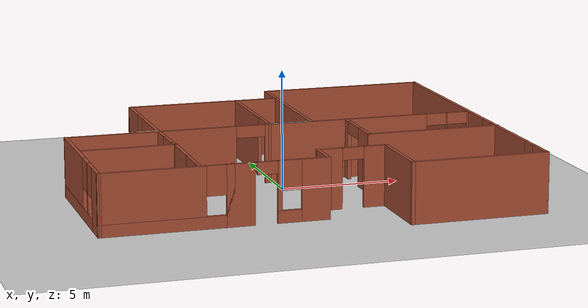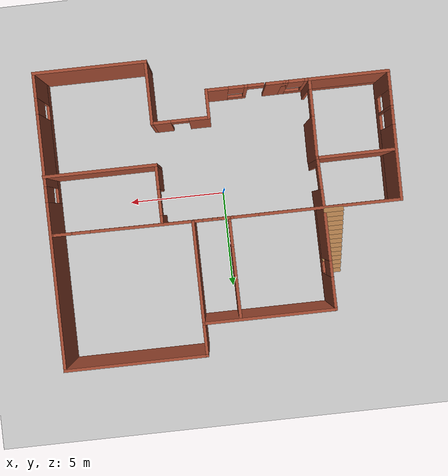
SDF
<sdf version="1.7">
 <world name="default">
  <light name="sun" type="directional">
   <pose>0 0 10 0 -0 0</pose>
   <diffuse>0.8 0.8 0.8 1</diffuse>
   <specular>0.2 0.2 0.2 1</specular>
   <attenuation>
    <range>1000</range>
    <constant>0.9</constant>
    <linear>0.01</linear>
    <quadratic>0.001</quadratic>
   </attenuation>
   <direction>-0.5 0.1 -0.9</direction>
   <spot><inner_angle>0</inner_angle><outer_angle>0</outer_angle><falloff>0</falloff></spot>
  </light>
  <model name="ground_plane">
   <static>1</static>
   <link name="link">
    <collision name="collision">
     <geometry><plane><normal>0 0 1</normal><size>100 100</size></plane></geometry>
     <surface>
      <contact><collide_bitmask>65535</collide_bitmask></contact>
      <friction><ode><mu>100</mu><mu2>50</mu2></ode></friction>
     </surface>
    </collision>
    <visual name="visual">
     <cast_shadows>0</cast_shadows>
     <geometry><plane><normal>0 0 1</normal><size>100 100</size></plane></geometry>
     <material>
      <script><uri>file://media/materials/scripts/gazebo.material</uri><name>Gazebo/Grey</name></script>
     </material>
    </visual>
   </link>
  </model>
  <gravity>0 0 -9.8</gravity>
  <magnetic_field>6e-06 2.3e-05 -4.2e-05</magnetic_field>
  <atmosphere type="adiabatic"/>
  <physics type="ode">
   <max_step_size>0.001</max_step_size>
   <real_time_factor>1</real_time_factor>
   <real_time_update_rate>1000</real_time_update_rate>
  </physics>
  <scene><ambient>0.4 0.4 0.4 1</ambient><background>0.7 0.7 0.7 1</background><shadows>1</shadows></scene>
  <spherical_coordinates>
   <surface_model>EARTH_WGS84</surface_model>
   <latitude_deg>0</latitude_deg>
   <longitude_deg>0</longitude_deg>
   <elevation>0</elevation>
   <heading_deg>0</heading_deg>
  </spherical_coordinates>
  <model name="map4">
   <pose>0.032945 0.628737 0 0 -0 0</pose>
   <link name="Stairs_0">
    <visual name="Stairs_0_Visual_0">
     <pose>-5.35318 4.14464 0.083333 0 -0 0</pose>
     <geometry><box><size>1 0.233333 0.166667</size></box></geometry>
     <material>
      <script><uri>file://media/materials/scripts/gazebo.material</uri><name>Gazebo/Wood</name></script>
      <ambient>1 1 1 1</ambient>
     </material>
     <meta><layer>0</layer></meta>
    </visual>
    <collision name="Stairs_0_Collision_0">
     <geometry><box><size>1 0.233333 0.166667</size></box></geometry>
     <pose>-5.35318 4.14464 0.083333 0 -0 0</pose>
    </collision>
    <visual name="Stairs_0_Visual_1">
     <pose>-5.35318 3.91131 0.25 0 -0 0</pose>
     <geometry><box><size>1 0.233333 0.166667</size></box></geometry>
     <material>
      <script><uri>file://media/materials/scripts/gazebo.material</uri><name>Gazebo/Wood</name></script>
      <ambient>1 1 1 1</ambient>
     </material>
     <meta><layer>0</layer></meta>
    </visual>
    <collision name="Stairs_0_Collision_1">
     <geometry><box><size>1 0.233333 0.166667</size></box></geometry>
     <pose>-5.35318 3.91131 0.25 0 -0 0</pose>
    </collision>
    <visual name="Stairs_0_Visual_2">
     <pose>-5.35318 3.67798 0.416667 0 -0 0</pose>
     <geometry><box><size>1 0.233333 0.166667</size></box></geometry>
     <material>
      <script><uri>file://media/materials/scripts/gazebo.material</uri><name>Gazebo/Wood</name></script>
      <ambient>1 1 1 1</ambient>
     </material>
     <meta><layer>0</layer></meta>
    </visual>
    <collision name="Stairs_0_Collision_2">
     <geometry><box><size>1 0.233333 0.166667</size></box></geometry>
     <pose>-5.35318 3.67798 0.416667 0 -0 0</pose>
    </collision>
    <visual name="Stairs_0_Visual_3">
     <pose>-5.35318 3.44464 0.583333 0 -0 0</pose>
     <geometry><box><size>1 0.233333 0.166667</size></box></geometry>
     <material>
      <script><uri>file://media/materials/scripts/gazebo.material</uri><name>Gazebo/Wood</name></script>
      <ambient>1 1 1 1</ambient>
     </material>
     <meta><layer>0</layer></meta>
    </visual>
    <collision name="Stairs_0_Collision_3">
     <geometry><box><size>1 0.233333 0.166667</size></box></geometry>
     <pose>-5.35318 3.44464 0.583333 0 -0 0</pose>
    </collision>
    <visual name="Stairs_0_Visual_4">
     <pose>-5.35318 3.21131 0.75 0 -0 0</pose>
     <geometry><box><size>1 0.233333 0.166667</size></box></geometry>
     <material>
      <script><uri>file://media/materials/scripts/gazebo.material</uri><name>Gazebo/Wood</name></script>
      <ambient>1 1 1 1</ambient>
     </material>
     <meta><layer>0</layer></meta>
    </visual>
    <collision name="Stairs_0_Collision_4">
     <geometry><box><size>1 0.233333 0.166667</size></box></geometry>
     <pose>-5.35318 3.21131 0.75 0 -0 0</pose>
    </collision>
    <visual name="Stairs_0_Visual_5">
     <pose>-5.35318 2.97798 0.916667 0 -0 0</pose>
     <geometry><box><size>1 0.233333 0.166667</size></box></geometry>
     <material>
      <script><uri>file://media/materials/scripts/gazebo.material</uri><name>Gazebo/Wood</name></script>
      <ambient>1 1 1 1</ambient>
     </material>
     <meta><layer>0</layer></meta>
    </visual>
    <collision name="Stairs_0_Collision_5">
     <geometry><box><size>1 0.233333 0.166667</size></box></geometry>
     <pose>-5.35318 2.97798 0.916667 0 -0 0</pose>
    </collision>
    <visual name="Stairs_0_Visual_6">
     <pose>-5.35318 2.74464 1.08333 0 -0 0</pose>
     <geometry><box><size>1 0.233333 0.166667</size></box></geometry>
     <material>
      <script><uri>file://media/materials/scripts/gazebo.material</uri><name>Gazebo/Wood</name></script>
      <ambient>1 1 1 1</ambient>
     </material>
     <meta><layer>0</layer></meta>
    </visual>
    <collision name="Stairs_0_Collision_6">
     <geometry><box><size>1 0.233333 0.166667</size></box></geometry>
     <pose>-5.35318 2.74464 1.08333 0 -0 0</pose>
    </collision>
    <visual name="Stairs_0_Visual_7">
     <pose>-5.35318 2.51131 1.25 0 -0 0</pose>
     <geometry><box><size>1 0.233333 0.166667</size></box></geometry>
     <material>
      <script><uri>file://media/materials/scripts/gazebo.material</uri><name>Gazebo/Wood</name></script>
      <ambient>1 1 1 1</ambient>
     </material>
     <meta><layer>0</layer></meta>
    </visual>
    <collision name="Stairs_0_Collision_7">
     <geometry><box><size>1 0.233333 0.166667</size></box></geometry>
     <pose>-5.35318 2.51131 1.25 0 -0 0</pose>
    </collision>
    <visual name="Stairs_0_Visual_8">
     <pose>-5.35318 2.27798 1.41667 0 -0 0</pose>
     <geometry><box><size>1 0.233333 0.166667</size></box></geometry>
     <material>
      <script><uri>file://media/materials/scripts/gazebo.material</uri><name>Gazebo/Wood</name></script>
      <ambient>1 1 1 1</ambient>
     </material>
     <meta><layer>0</layer></meta>
    </visual>
    <collision name="Stairs_0_Collision_8">
     <geometry><box><size>1 0.233333 0.166667</size></box></geometry>
     <pose>-5.35318 2.27798 1.41667 0 -0 0</pose>
    </collision>
    <visual name="Stairs_0_Visual_9">
     <pose>-5.35318 2.04465 1.58333 0 -0 0</pose>
     <geometry><box><size>1 0.233333 0.166667</size></box></geometry>
     <material>
      <script><uri>file://media/materials/scripts/gazebo.material</uri><name>Gazebo/Wood</name></script>
      <ambient>1 1 1 1</ambient>
     </material>
     <meta><layer>0</layer></meta>
    </visual>
    <collision name="Stairs_0_Collision_9">
     <geometry><box><size>1 0.233333 0.166667</size></box></geometry>
     <pose>-5.35318 2.04465 1.58333 0 -0 0</pose>
    </collision>
    <visual name="Stairs_0_Visual_10">
     <pose>-5.35318 1.81131 1.75 0 -0 0</pose>
     <geometry><box><size>1 0.233333 0.166667</size></box></geometry>
     <material>
      <script><uri>file://media/materials/scripts/gazebo.material</uri><name>Gazebo/Wood</name></script>
      <ambient>1 1 1 1</ambient>
     </material>
     <meta><layer>0</layer></meta>
    </visual>
    <collision name="Stairs_0_Collision_10">
     <geometry><box><size>1 0.233333 0.166667</size></box></geometry>
     <pose>-5.35318 1.81131 1.75 0 -0 0</pose>
    </collision>
    <visual name="Stairs_0_Visual_11">
     <pose>-5.35318 1.57798 1.91667 0 -0 0</pose>
     <geometry><box><size>1 0.233333 0.166667</size></box></geometry>
     <material>
      <script><uri>file://media/materials/scripts/gazebo.material</uri><name>Gazebo/Wood</name></script>
      <ambient>1 1 1 1</ambient>
     </material>
     <meta><layer>0</layer></meta>
    </visual>
    <collision name="Stairs_0_Collision_11">
     <geometry><box><size>1 0.233333 0.166667</size></box></geometry>
     <pose>-5.35318 1.57798 1.91667 0 -0 0</pose>
    </collision>
    <visual name="Stairs_0_Visual_12">
     <pose>-5.35318 1.34465 2.08333 0 -0 0</pose>
     <geometry><box><size>1 0.233333 0.166667</size></box></geometry>
     <material>
      <script><uri>file://media/materials/scripts/gazebo.material</uri><name>Gazebo/Wood</name></script>
      <ambient>1 1 1 1</ambient>
     </material>
     <meta><layer>0</layer></meta>
    </visual>
    <collision name="Stairs_0_Collision_12">
     <geometry><box><size>1 0.233333 0.166667</size></box></geometry>
     <pose>-5.35318 1.34465 2.08333 0 -0 0</pose>
    </collision>
    <visual name="Stairs_0_Visual_13">
     <pose>-5.35318 1.11131 2.25 0 -0 0</pose>
     <geometry><box><size>1 0.233333 0.166667</size></box></geometry>
     <material>
      <script><uri>file://media/materials/scripts/gazebo.material</uri><name>Gazebo/Wood</name></script>
      <ambient>1 1 1 1</ambient>
     </material>
     <meta><layer>0</layer></meta>
    </visual>
    <collision name="Stairs_0_Collision_13">
     <geometry><box><size>1 0.233333 0.166667</size></box></geometry>
     <pose>-5.35318 1.11131 2.25 0 -0 0</pose>
    </collision>
    <visual name="Stairs_0_Visual_14">
     <pose>-5.35318 0.877978 2.41667 0 -0 0</pose>
     <geometry><box><size>1 0.233333 0.166667</size></box></geometry>
     <material>
      <script><uri>file://media/materials/scripts/gazebo.material</uri><name>Gazebo/Wood</name></script>
      <ambient>1 1 1 1</ambient>
     </material>
     <meta><layer>0</layer></meta>
    </visual>
    <collision name="Stairs_0_Collision_14">
     <geometry><box><size>1 0.233333 0.166667</size></box></geometry>
     <pose>-5.35318 0.877978 2.41667 0 -0 0</pose>
    </collision>
   </link>
   <link name="Wall_0">
    <collision name="Wall_0_Collision">
     <geometry><box><size>6.75 0.15 2.5</size></box></geometry>
     <pose>0 0 1.25 0 -0 0</pose>
    </collision>
    <visual name="Wall_0_Visual">
     <pose>0 0 1.25 0 -0 0</pose>
     <geometry><box><size>6.75 0.15 2.5</size></box></geometry>
     <material>
      <script><uri>file://media/materials/scripts/gazebo.material</uri><name>Gazebo/Bricks</name></script>
      <ambient>1 1 1 1</ambient>
     </material>
     <meta><layer>0</layer></meta>
    </visual>
    <pose>-1.64003 5.825 0 0 -0 0</pose>
   </link>
   <link name="Wall_10">
    <collision name="Wall_10_Collision">
     <geometry><box><size>1.5 0.15 2.5</size></box></geometry>
     <pose>0 0 1.25 0 -0 0</pose>
    </collision>
    <visual name="Wall_10_Visual">
     <pose>0 0 1.25 0 -0 0</pose>
     <geometry><box><size>1.5 0.15 2.5</size></box></geometry>
     <material>
      <script><uri>file://media/materials/scripts/gazebo.material</uri><name>Gazebo/Bricks</name></script>
      <ambient>1 1 1 1</ambient>
     </material>
     <meta><layer>0</layer></meta>
    </visual>
    <pose>0.309969 -5 0 0 -0 -1.5708</pose>
   </link>
   <link name="Wall_11">
    <pose>-4.24003 -5.675 0 0 -0 3.14159</pose>
    <visual name="Wall_11_Visual_0">
     <pose>-4.03894 0 1.25 0 -0 0</pose>
     <geometry><box><size>1.17213 0.15 2.5</size></box></geometry>
     <material>
      <script><uri>file://media/materials/scripts/gazebo.material</uri><name>Gazebo/Bricks</name></script>
      <ambient>1 1 1 1</ambient>
     </material>
     <meta><layer>0</layer></meta>
    </visual>
    <collision name="Wall_11_Collision_0">
     <geometry><box><size>1.17213 0.15 2.5</size></box></geometry>
     <pose>-4.03894 0 1.25 0 -0 0</pose>
    </collision>
    <visual name="Wall_11_Visual_1">
     <pose>-1.00315 0 1.25 0 -0 0</pose>
     <geometry><box><size>1.14054 0.15 2.5</size></box></geometry>
     <material>
      <script><uri>file://media/materials/scripts/gazebo.material</uri><name>Gazebo/Bricks</name></script>
      <ambient>1 1 1 1</ambient>
     </material>
     <meta><layer>0</layer></meta>
    </visual>
    <collision name="Wall_11_Collision_1">
     <geometry><box><size>1.14054 0.15 2.5</size></box></geometry>
     <pose>-1.00315 0 1.25 0 -0 0</pose>
    </collision>
    <visual name="Wall_11_Visual_2">
     <pose>-0.592511 0 1.25 0 -0 0</pose>
     <geometry><box><size>0.319273 0.15 2.5</size></box></geometry>
     <material>
      <script><uri>file://media/materials/scripts/gazebo.material</uri><name>Gazebo/Bricks</name></script>
      <ambient>1 1 1 1</ambient>
     </material>
     <meta><layer>0</layer></meta>
    </visual>
    <collision name="Wall_11_Collision_2">
     <geometry><box><size>0.319273 0.15 2.5</size></box></geometry>
     <pose>-0.592511 0 1.25 0 -0 0</pose>
    </collision>
    <visual name="Wall_11_Visual_3">
     <pose>-2.96315 0 0.25 0 -0 0</pose>
     <geometry><box><size>0.979455 0.15 0.5</size></box></geometry>
     <material>
      <script><uri>file://media/materials/scripts/gazebo.material</uri><name>Gazebo/Bricks</name></script>
      <ambient>1 1 1 1</ambient>
     </material>
     <meta><layer>0</layer></meta>
    </visual>
    <collision name="Wall_11_Collision_3">
     <geometry><box><size>0.979455 0.15 0.5</size></box></geometry>
     <pose>-2.96315 0 0.25 0 -0 0</pose>
    </collision>
    <visual name="Wall_11_Visual_4">
     <pose>2.09606 0 0.25 0 -0 0</pose>
     <geometry><box><size>5.05788 0.15 0.5</size></box></geometry>
     <material>
      <script><uri>file://media/materials/scripts/gazebo.material</uri><name>Gazebo/Bricks</name></script>
      <ambient>1 1 1 1</ambient>
     </material>
     <meta><layer>0</layer></meta>
    </visual>
    <collision name="Wall_11_Collision_4">
     <geometry><box><size>5.05788 0.15 0.5</size></box></geometry>
     <pose>2.09606 0 0.25 0 -0 0</pose>
    </collision>
    <visual name="Wall_11_Visual_5">
     <pose>2.09606 0 0.25 0 -0 0</pose>
     <geometry><box><size>5.05788 0.15 0.5</size></box></geometry>
     <material>
      <script><uri>file://media/materials/scripts/gazebo.material</uri><name>Gazebo/Bricks</name></script>
      <ambient>1 1 1 1</ambient>
     </material>
     <meta><layer>0</layer></meta>
    </visual>
    <collision name="Wall_11_Collision_5">
     <geometry><box><size>5.05788 0.15 0.5</size></box></geometry>
     <pose>2.09606 0 0.25 0 -0 0</pose>
    </collision>
    <visual name="Wall_11_Visual_6">
     <pose>-2.56315 0 1.5 0 -0 0</pose>
     <geometry><box><size>0.179455 0.15 2</size></box></geometry>
     <material>
      <script><uri>file://media/materials/scripts/gazebo.material</uri><name>Gazebo/Bricks</name></script>
      <ambient>1 1 1 1</ambient>
     </material>
     <meta><layer>0</layer></meta>
    </visual>
    <collision name="Wall_11_Collision_6">
     <geometry><box><size>0.179455 0.15 2</size></box></geometry>
     <pose>-2.56315 0 1.5 0 -0 0</pose>
    </collision>
    <visual name="Wall_11_Visual_7">
     <pose>-2.56315 0 1.5 0 -0 0</pose>
     <geometry><box><size>0.179455 0.15 2</size></box></geometry>
     <material>
      <script><uri>file://media/materials/scripts/gazebo.material</uri><name>Gazebo/Bricks</name></script>
      <ambient>1 1 1 1</ambient>
     </material>
     <meta><layer>0</layer></meta>
    </visual>
    <collision name="Wall_11_Collision_7">
     <geometry><box><size>0.179455 0.15 2</size></box></geometry>
     <pose>-2.56315 0 1.5 0 -0 0</pose>
    </collision>
    <visual name="Wall_11_Visual_8">
     <pose>2.49606 0 1.5 0 -0 0</pose>
     <geometry><box><size>4.25788 0.15 2</size></box></geometry>
     <material>
      <script><uri>file://media/materials/scripts/gazebo.material</uri><name>Gazebo/Bricks</name></script>
      <ambient>1 1 1 1</ambient>
     </material>
     <meta><layer>0</layer></meta>
    </visual>
    <collision name="Wall_11_Collision_8">
     <geometry><box><size>4.25788 0.15 2</size></box></geometry>
     <pose>2.49606 0 1.5 0 -0 0</pose>
    </collision>
    <visual name="Wall_11_Visual_9">
     <pose>2.49606 0 1.5 0 -0 0</pose>
     <geometry><box><size>4.25788 0.15 2</size></box></geometry>
     <material>
      <script><uri>file://media/materials/scripts/gazebo.material</uri><name>Gazebo/Bricks</name></script>
      <ambient>1 1 1 1</ambient>
     </material>
     <meta><layer>0</layer></meta>
    </visual>
    <collision name="Wall_11_Collision_9">
     <geometry><box><size>4.25788 0.15 2</size></box></geometry>
     <pose>2.49606 0 1.5 0 -0 0</pose>
    </collision>
    <visual name="Wall_11_Visual_10">
     <pose>-3.05287 0 1.9 0 -0 0</pose>
     <geometry><box><size>0.8 0.15 1.2</size></box></geometry>
     <material>
      <script><uri>file://media/materials/scripts/gazebo.material</uri><name>Gazebo/Bricks</name></script>
      <ambient>1 1 1 1</ambient>
     </material>
     <meta><layer>0</layer></meta>
    </visual>
    <collision name="Wall_11_Collision_10">
     <geometry><box><size>0.8 0.15 1.2</size></box></geometry>
     <pose>-3.05287 0 1.9 0 -0 0</pose>
    </collision>
    <visual name="Wall_11_Visual_11">
     <pose>-0.032875 0 1.9 0 -0 0</pose>
     <geometry><box><size>0.8 0.15 1.2</size></box></geometry>
     <material>
      <script><uri>file://media/materials/scripts/gazebo.material</uri><name>Gazebo/Bricks</name></script>
      <ambient>1 1 1 1</ambient>
     </material>
     <meta><layer>0</layer></meta>
    </visual>
    <collision name="Wall_11_Collision_11">
     <geometry><box><size>0.8 0.15 1.2</size></box></geometry>
     <pose>-0.032875 0 1.9 0 -0 0</pose>
    </collision>
    <visual name="Wall_11_Visual_12">
     <pose>-0.032875 0 1.9 0 -0 0</pose>
     <geometry><box><size>0.8 0.15 1.2</size></box></geometry>
     <material>
      <script><uri>file://media/materials/scripts/gazebo.material</uri><name>Gazebo/Bricks</name></script>
      <ambient>1 1 1 1</ambient>
     </material>
     <meta><layer>0</layer></meta>
    </visual>
    <collision name="Wall_11_Collision_12">
     <geometry><box><size>0.8 0.15 1.2</size></box></geometry>
     <pose>-0.032875 0 1.9 0 -0 0</pose>
    </collision>
    <visual name="Wall_11_Visual_13">
     <pose>-2.06278 0 2.25 0 -0 0</pose>
     <geometry><box><size>0.821272 0.15 0.5</size></box></geometry>
     <material>
      <script><uri>file://media/materials/scripts/gazebo.material</uri><name>Gazebo/Bricks</name></script>
      <ambient>1 1 1 1</ambient>
     </material>
     <meta><layer>0</layer></meta>
    </visual>
    <collision name="Wall_11_Collision_13">
     <geometry><box><size>0.821272 0.15 0.5</size></box></geometry>
     <pose>-2.06278 0 2.25 0 -0 0</pose>
    </collision>
    <visual name="Wall_11_Visual_14">
     <pose>-2.06278 0 2.25 0 -0 0</pose>
     <geometry><box><size>0.821272 0.15 0.5</size></box></geometry>
     <material>
      <script><uri>file://media/materials/scripts/gazebo.material</uri><name>Gazebo/Bricks</name></script>
      <ambient>1 1 1 1</ambient>
     </material>
     <meta><layer>0</layer></meta>
    </visual>
    <collision name="Wall_11_Collision_14">
     <geometry><box><size>0.821272 0.15 0.5</size></box></geometry>
     <pose>-2.06278 0 2.25 0 -0 0</pose>
    </collision>
   </link>
   <link name="Wall_12">
    <pose>-8.77482 -2.46958 0 0 -0 1.56605</pose>
    <visual name="Wall_12_Visual_0">
     <pose>-2.77549 0 1.25 0 -0 0</pose>
     <geometry><box><size>1.00992 0.15 2.5</size></box></geometry>
     <material>
      <script><uri>file://media/materials/scripts/gazebo.material</uri><name>Gazebo/Bricks</name></script>
      <ambient>1 1 1 1</ambient>
     </material>
     <meta><layer>0</layer></meta>
    </visual>
    <collision name="Wall_12_Collision_0">
     <geometry><box><size>1.00992 0.15 2.5</size></box></geometry>
     <pose>-2.77549 0 1.25 0 -0 0</pose>
    </collision>
    <visual name="Wall_12_Visual_1">
     <pose>0.504959 0 0.25 0 -0 0</pose>
     <geometry><box><size>5.55099 0.15 0.5</size></box></geometry>
     <material>
      <script><uri>file://media/materials/scripts/gazebo.material</uri><name>Gazebo/Bricks</name></script>
      <ambient>1 1 1 1</ambient>
     </material>
     <meta><layer>0</layer></meta>
    </visual>
    <collision name="Wall_12_Collision_1">
     <geometry><box><size>5.55099 0.15 0.5</size></box></geometry>
     <pose>0.504959 0 0.25 0 -0 0</pose>
    </collision>
    <visual name="Wall_12_Visual_2">
     <pose>-1.40054 0 1.5 0 -0 0</pose>
     <geometry><box><size>0.139989 0.15 2</size></box></geometry>
     <material>
      <script><uri>file://media/materials/scripts/gazebo.material</uri><name>Gazebo/Bricks</name></script>
      <ambient>1 1 1 1</ambient>
     </material>
     <meta><layer>0</layer></meta>
    </visual>
    <collision name="Wall_12_Collision_2">
     <geometry><box><size>0.139989 0.15 2</size></box></geometry>
     <pose>-1.40054 0 1.5 0 -0 0</pose>
    </collision>
    <visual name="Wall_12_Visual_3">
     <pose>1.37495 0 1.5 0 -0 0</pose>
     <geometry><box><size>3.811 0.15 2</size></box></geometry>
     <material>
      <script><uri>file://media/materials/scripts/gazebo.material</uri><name>Gazebo/Bricks</name></script>
      <ambient>1 1 1 1</ambient>
     </material>
     <meta><layer>0</layer></meta>
    </visual>
    <collision name="Wall_12_Collision_3">
     <geometry><box><size>3.811 0.15 2</size></box></geometry>
     <pose>1.37495 0 1.5 0 -0 0</pose>
    </collision>
    <visual name="Wall_12_Visual_4">
     <pose>-1.87054 0 1.9 0 -0 0</pose>
     <geometry><box><size>0.8 0.15 1.2</size></box></geometry>
     <material>
      <script><uri>file://media/materials/scripts/gazebo.material</uri><name>Gazebo/Bricks</name></script>
      <ambient>1 1 1 1</ambient>
     </material>
     <meta><layer>0</layer></meta>
    </visual>
    <collision name="Wall_12_Collision_4">
     <geometry><box><size>0.8 0.15 1.2</size></box></geometry>
     <pose>-1.87054 0 1.9 0 -0 0</pose>
    </collision>
    <visual name="Wall_12_Visual_5">
     <pose>-0.930546 0 1.9 0 -0 0</pose>
     <geometry><box><size>0.8 0.15 1.2</size></box></geometry>
     <material>
      <script><uri>file://media/materials/scripts/gazebo.material</uri><name>Gazebo/Bricks</name></script>
      <ambient>1 1 1 1</ambient>
     </material>
     <meta><layer>0</layer></meta>
    </visual>
    <collision name="Wall_12_Collision_5">
     <geometry><box><size>0.8 0.15 1.2</size></box></geometry>
     <pose>-0.930546 0 1.9 0 -0 0</pose>
    </collision>
   </link>
   <link name="Wall_13">
    <pose>-4.45961 0.735835 0 0 -0 0</pose>
    <visual name="Wall_13_Visual_0">
     <pose>-0.768066 0 1.25 0 -0 0</pose>
     <geometry><box><size>7.21387 0.15 2.5</size></box></geometry>
     <material>
      <script><uri>file://media/materials/scripts/gazebo.material</uri><name>Gazebo/Bricks</name></script>
      <ambient>1 1 1 1</ambient>
     </material>
     <meta><layer>0</layer></meta>
    </visual>
    <collision name="Wall_13_Collision_0">
     <geometry><box><size>7.21387 0.15 2.5</size></box></geometry>
     <pose>-0.768066 0 1.25 0 -0 0</pose>
    </collision>
    <visual name="Wall_13_Visual_1">
     <pose>4.22693 0 1.25 0 -0 0</pose>
     <geometry><box><size>0.296132 0.15 2.5</size></box></geometry>
     <material>
      <script><uri>file://media/materials/scripts/gazebo.material</uri><name>Gazebo/Bricks</name></script>
      <ambient>1 1 1 1</ambient>
     </material>
     <meta><layer>0</layer></meta>
    </visual>
    <collision name="Wall_13_Collision_1">
     <geometry><box><size>0.296132 0.15 2.5</size></box></geometry>
     <pose>4.22693 0 1.25 0 -0 0</pose>
    </collision>
    <visual name="Wall_13_Visual_2">
     <pose>3.45887 0 2.25 0 -0 0</pose>
     <geometry><box><size>1.24 0.15 0.5</size></box></geometry>
     <material>
      <script><uri>file://media/materials/scripts/gazebo.material</uri><name>Gazebo/Bricks</name></script>
      <ambient>1 1 1 1</ambient>
     </material>
     <meta><layer>0</layer></meta>
    </visual>
    <collision name="Wall_13_Collision_2">
     <geometry><box><size>1.24 0.15 0.5</size></box></geometry>
     <pose>3.45887 0 2.25 0 -0 0</pose>
    </collision>
   </link>
   <link name="Wall_14">
    <pose>-0.174822 3.25542 0 0 -0 1.57683</pose>
    <visual name="Wall_14_Visual_0">
     <pose>-2.46216 0 1.25 0 -0 0</pose>
     <geometry><box><size>0.265672 0.15 2.5</size></box></geometry>
     <material>
      <script><uri>file://media/materials/scripts/gazebo.material</uri><name>Gazebo/Bricks</name></script>
      <ambient>1 1 1 1</ambient>
     </material>
     <meta><layer>0</layer></meta>
    </visual>
    <collision name="Wall_14_Collision_0">
     <geometry><box><size>0.265672 0.15 2.5</size></box></geometry>
     <pose>-2.46216 0 1.25 0 -0 0</pose>
    </collision>
    <visual name="Wall_14_Visual_1">
     <pose>0.762832 0 1.25 0 -0 0</pose>
     <geometry><box><size>3.66433 0.15 2.5</size></box></geometry>
     <material>
      <script><uri>file://media/materials/scripts/gazebo.material</uri><name>Gazebo/Bricks</name></script>
      <ambient>1 1 1 1</ambient>
     </material>
     <meta><layer>0</layer></meta>
    </visual>
    <collision name="Wall_14_Collision_1">
     <geometry><box><size>3.66433 0.15 2.5</size></box></geometry>
     <pose>0.762832 0 1.25 0 -0 0</pose>
    </collision>
    <visual name="Wall_14_Visual_2">
     <pose>-1.69933 0 2.25 0 -0 0</pose>
     <geometry><box><size>1.25999 0.15 0.5</size></box></geometry>
     <material>
      <script><uri>file://media/materials/scripts/gazebo.material</uri><name>Gazebo/Bricks</name></script>
      <ambient>1 1 1 1</ambient>
     </material>
     <meta><layer>0</layer></meta>
    </visual>
    <collision name="Wall_14_Collision_2">
     <geometry><box><size>1.25999 0.15 0.5</size></box></geometry>
     <pose>-1.69933 0 2.25 0 -0 0</pose>
    </collision>
   </link>
   <link name="Wall_16">
    <pose>-4.92003 3.285 0 0 -0 -1.56292</pose>
    <visual name="Wall_16_Visual_0">
     <pose>-1.76684 0 1.25 0 -0 0</pose>
     <geometry><box><size>1.69648 0.15 2.5</size></box></geometry>
     <material>
      <script><uri>file://media/materials/scripts/gazebo.material</uri><name>Gazebo/Bricks</name></script>
      <ambient>1 1 1 1</ambient>
     </material>
     <meta><layer>0</layer></meta>
    </visual>
    <collision name="Wall_16_Collision_0">
     <geometry><box><size>1.69648 0.15 2.5</size></box></geometry>
     <pose>-1.76684 0 1.25 0 -0 0</pose>
    </collision>
    <visual name="Wall_16_Visual_1">
     <pose>0.84824 0 0.25 0 -0 0</pose>
     <geometry><box><size>3.53368 0.15 0.5</size></box></geometry>
     <material>
      <script><uri>file://media/materials/scripts/gazebo.material</uri><name>Gazebo/Bricks</name></script>
      <ambient>1 1 1 1</ambient>
     </material>
     <meta><layer>0</layer></meta>
    </visual>
    <collision name="Wall_16_Collision_1">
     <geometry><box><size>3.53368 0.15 0.5</size></box></geometry>
     <pose>0.84824 0 0.25 0 -0 0</pose>
    </collision>
    <visual name="Wall_16_Visual_2">
     <pose>1.24824 0 1.5 0 -0 0</pose>
     <geometry><box><size>2.73368 0.15 2</size></box></geometry>
     <material>
      <script><uri>file://media/materials/scripts/gazebo.material</uri><name>Gazebo/Bricks</name></script>
      <ambient>1 1 1 1</ambient>
     </material>
     <meta><layer>0</layer></meta>
    </visual>
    <collision name="Wall_16_Collision_2">
     <geometry><box><size>2.73368 0.15 2</size></box></geometry>
     <pose>1.24824 0 1.5 0 -0 0</pose>
    </collision>
    <visual name="Wall_16_Visual_3">
     <pose>-0.518599 0 1.9 0 -0 0</pose>
     <geometry><box><size>0.8 0.15 1.2</size></box></geometry>
     <material>
      <script><uri>file://media/materials/scripts/gazebo.material</uri><name>Gazebo/Bricks</name></script>
      <ambient>1 1 1 1</ambient>
     </material>
     <meta><layer>0</layer></meta>
    </visual>
    <collision name="Wall_16_Collision_3">
     <geometry><box><size>0.8 0.15 1.2</size></box></geometry>
     <pose>-0.518599 0 1.9 0 -0 0</pose>
    </collision>
   </link>
   <link name="Wall_21">
    <collision name="Wall_21_Collision">
     <geometry><box><size>4.00005 0.15 2.5</size></box></geometry>
     <pose>0 0 1.25 0 -0 0</pose>
    </collision>
    <visual name="Wall_21_Visual">
     <pose>0 0 1.25 0 -0 0</pose>
     <geometry><box><size>4.00005 0.15 2.5</size></box></geometry>
     <material>
      <script><uri>file://media/materials/scripts/gazebo.material</uri><name>Gazebo/Bricks</name></script>
      <ambient>1 1 1 1</ambient>
     </material>
     <meta><layer>0</layer></meta>
    </visual>
    <pose>-6.75617 -1.75987 0 0 -0 0.005195</pose>
   </link>
   <link name="Wall_22">
    <pose>-4.83117 -3.68487 0 0 -0 -1.58113</pose>
    <visual name="Wall_22_Visual_0">
     <pose>-0.935239 0 1.25 0 -0 0</pose>
     <geometry><box><size>2.14973 0.15 2.5</size></box></geometry>
     <material>
      <script><uri>file://media/materials/scripts/gazebo.material</uri><name>Gazebo/Bricks</name></script>
      <ambient>1 1 1 1</ambient>
     </material>
     <meta><layer>0</layer></meta>
    </visual>
    <collision name="Wall_22_Collision_0">
     <geometry><box><size>2.14973 0.15 2.5</size></box></geometry>
     <pose>-0.935239 0 1.25 0 -0 0</pose>
    </collision>
    <visual name="Wall_22_Visual_1">
     <pose>1.753 0 1.25 0 -0 0</pose>
     <geometry><box><size>0.514216 0.15 2.5</size></box></geometry>
     <material>
      <script><uri>file://media/materials/scripts/gazebo.material</uri><name>Gazebo/Bricks</name></script>
      <ambient>1 1 1 1</ambient>
     </material>
     <meta><layer>0</layer></meta>
    </visual>
    <collision name="Wall_22_Collision_1">
     <geometry><box><size>0.514216 0.15 2.5</size></box></geometry>
     <pose>1.753 0 1.25 0 -0 0</pose>
    </collision>
    <visual name="Wall_22_Visual_2">
     <pose>0.817756 0 2.25 0 -0 0</pose>
     <geometry><box><size>1.35626 0.15 0.5</size></box></geometry>
     <material>
      <script><uri>file://media/materials/scripts/gazebo.material</uri><name>Gazebo/Bricks</name></script>
      <ambient>1 1 1 1</ambient>
     </material>
     <meta><layer>0</layer></meta>
    </visual>
    <collision name="Wall_22_Collision_2">
     <geometry><box><size>1.35626 0.15 0.5</size></box></geometry>
     <pose>0.817756 0 2.25 0 -0 0</pose>
    </collision>
   </link>
   <link name="Wall_26">
    <collision name="Wall_26_Collision">
     <geometry><box><size>5.25 0.15 2.5</size></box></geometry>
     <pose>0 0 1.25 0 -0 0</pose>
    </collision>
    <visual name="Wall_26_Visual">
     <pose>0 0 1.25 0 -0 0</pose>
     <geometry><box><size>5.25 0.15 2.5</size></box></geometry>
     <material>
      <script><uri>file://media/materials/scripts/gazebo.material</uri><name>Gazebo/Bricks</name></script>
      <ambient>1 1 1 1</ambient>
     </material>
     <meta><layer>0</layer></meta>
    </visual>
    <pose>1.65997 3.275 0 0 -0 -1.5708</pose>
   </link>
   <link name="Wall_27">
    <collision name="Wall_27_Collision">
     <geometry><box><size>1.96961 0.15 2.5</size></box></geometry>
     <pose>0 0 1.25 0 -0 0</pose>
    </collision>
    <visual name="Wall_27_Visual">
     <pose>0 0 1.25 0 -0 0</pose>
     <geometry><box><size>1.96961 0.15 2.5</size></box></geometry>
     <material>
      <script><uri>file://media/materials/scripts/gazebo.material</uri><name>Gazebo/Grey</name></script>
      <ambient>1 1 1 1</ambient>
     </material>
     <meta><layer>0</layer></meta>
    </visual>
    <pose>0.750178 0.730417 0 0 -0 3.13564</pose>
   </link>
   <link name="Wall_28">
    <pose>4.25018 0.705417 0 0 -0 -0.006898</pose>
    <visual name="Wall_28_Visual_0">
     <pose>-0.977519 0 1.25 0 -0 0</pose>
     <geometry><box><size>7.01475 0.15 2.5</size></box></geometry>
     <material>
      <script><uri>file://media/materials/scripts/gazebo.material</uri><name>Gazebo/Bricks</name></script>
      <ambient>1 1 1 1</ambient>
     </material>
     <meta><layer>0</layer></meta>
    </visual>
    <collision name="Wall_28_Collision_0">
     <geometry><box><size>7.01475 0.15 2.5</size></box></geometry>
     <pose>-0.977519 0 1.25 0 -0 0</pose>
    </collision>
    <visual name="Wall_28_Visual_1">
     <pose>3.45142 0 1.25 0 -0 0</pose>
     <geometry><box><size>0.04313 0.15 2.5</size></box></geometry>
     <material>
      <script><uri>file://media/materials/scripts/gazebo.material</uri><name>Gazebo/Bricks</name></script>
      <ambient>1 1 1 1</ambient>
     </material>
     <meta><layer>0</layer></meta>
    </visual>
    <collision name="Wall_28_Collision_1">
     <geometry><box><size>0.04313 0.15 2.5</size></box></geometry>
     <pose>3.45142 0 1.25 0 -0 0</pose>
    </collision>
    <visual name="Wall_28_Visual_2">
     <pose>4.42894 0 1.25 0 -0 0</pose>
     <geometry><box><size>0.111909 0.15 2.5</size></box></geometry>
     <material>
      <script><uri>file://media/materials/scripts/gazebo.material</uri><name>Gazebo/Bricks</name></script>
      <ambient>1 1 1 1</ambient>
     </material>
     <meta><layer>0</layer></meta>
    </visual>
    <collision name="Wall_28_Collision_2">
     <geometry><box><size>0.111909 0.15 2.5</size></box></geometry>
     <pose>4.42894 0 1.25 0 -0 0</pose>
    </collision>
    <visual name="Wall_28_Visual_3">
     <pose>2.97986 0 2.25 0 -0 0</pose>
     <geometry><box><size>0.9 0.15 0.5</size></box></geometry>
     <material>
      <script><uri>file://media/materials/scripts/gazebo.material</uri><name>Gazebo/Bricks</name></script>
      <ambient>1 1 1 1</ambient>
     </material>
     <meta><layer>0</layer></meta>
    </visual>
    <collision name="Wall_28_Collision_3">
     <geometry><box><size>0.9 0.15 0.5</size></box></geometry>
     <pose>2.97986 0 2.25 0 -0 0</pose>
    </collision>
    <visual name="Wall_28_Visual_4">
     <pose>3.92299 0 2.25 0 -0 0</pose>
     <geometry><box><size>0.9 0.15 0.5</size></box></geometry>
     <material>
      <script><uri>file://media/materials/scripts/gazebo.material</uri><name>Gazebo/Bricks</name></script>
      <ambient>1 1 1 1</ambient>
     </material>
     <meta><layer>0</layer></meta>
    </visual>
    <collision name="Wall_28_Collision_4">
     <geometry><box><size>0.9 0.15 0.5</size></box></geometry>
     <pose>3.92299 0 2.25 0 -0 0</pose>
    </collision>
   </link>
   <link name="Wall_3">
    <collision name="Wall_3_Collision">
     <geometry><box><size>1.75 0.15 2.5</size></box></geometry>
     <pose>0 0 1.25 0 -0 0</pose>
    </collision>
    <visual name="Wall_3_Visual">
     <pose>0 0 1.25 0 -0 0</pose>
     <geometry><box><size>1.75 0.15 2.5</size></box></geometry>
     <material>
      <script><uri>file://media/materials/scripts/gazebo.material</uri><name>Gazebo/Bricks</name></script>
      <ambient>1 1 1 1</ambient>
     </material>
     <meta><layer>0</layer></meta>
    </visual>
    <pose>1.65997 6.625 0 0 -0 1.5708</pose>
   </link>
   <link name="Wall_39">
    <pose>3.19039 -0.839165 0 0 -0 1.5708</pose>
    <visual name="Wall_39_Visual_0">
     <pose>-0.85667 0 1.25 0 -0 0</pose>
     <geometry><box><size>1.28666 0.15 2.5</size></box></geometry>
     <material>
      <script><uri>file://media/materials/scripts/gazebo.material</uri><name>Gazebo/Bricks</name></script>
      <ambient>1 1 1 1</ambient>
     </material>
     <meta><layer>0</layer></meta>
    </visual>
    <collision name="Wall_39_Collision_0">
     <geometry><box><size>1.28666 0.15 2.5</size></box></geometry>
     <pose>-0.85667 0 1.25 0 -0 0</pose>
    </collision>
    <visual name="Wall_39_Visual_1">
     <pose>1.29749 0 1.25 0 -0 0</pose>
     <geometry><box><size>0.405023 0.15 2.5</size></box></geometry>
     <material>
      <script><uri>file://media/materials/scripts/gazebo.material</uri><name>Gazebo/Bricks</name></script>
      <ambient>1 1 1 1</ambient>
     </material>
     <meta><layer>0</layer></meta>
    </visual>
    <collision name="Wall_39_Collision_1">
     <geometry><box><size>0.405023 0.15 2.5</size></box></geometry>
     <pose>1.29749 0 1.25 0 -0 0</pose>
    </collision>
    <visual name="Wall_39_Visual_2">
     <pose>0.440819 0 2.25 0 -0 0</pose>
     <geometry><box><size>1.30832 0.15 0.5</size></box></geometry>
     <material>
      <script><uri>file://media/materials/scripts/gazebo.material</uri><name>Gazebo/Bricks</name></script>
      <ambient>1 1 1 1</ambient>
     </material>
     <meta><layer>0</layer></meta>
    </visual>
    <collision name="Wall_39_Collision_2">
     <geometry><box><size>1.30832 0.15 0.5</size></box></geometry>
     <pose>0.440819 0 2.25 0 -0 0</pose>
    </collision>
   </link>
   <link name="Wall_4">
    <collision name="Wall_4_Collision">
     <geometry><box><size>7.25 0.15 2.5</size></box></geometry>
     <pose>0 0 1.25 0 -0 0</pose>
    </collision>
    <visual name="Wall_4_Visual">
     <pose>0 0 1.25 0 -0 0</pose>
     <geometry><box><size>7.25 0.15 2.5</size></box></geometry>
     <material>
      <script><uri>file://media/materials/scripts/gazebo.material</uri><name>Gazebo/Bricks</name></script>
      <ambient>1 1 1 1</ambient>
     </material>
     <meta><layer>0</layer></meta>
    </visual>
    <pose>5.20997 7.425 0 0 -0 0</pose>
   </link>
   <link name="Wall_42">
    <collision name="Wall_42_Collision">
     <geometry><box><size>5.75 0.15 2.5</size></box></geometry>
     <pose>0 0 1.25 0 -0 0</pose>
    </collision>
    <visual name="Wall_42_Visual">
     <pose>0 0 1.25 0 -0 0</pose>
     <geometry><box><size>5.75 0.15 2.5</size></box></geometry>
     <material>
      <script><uri>file://media/materials/scripts/gazebo.material</uri><name>Gazebo/Bricks</name></script>
      <ambient>1 1 1 1</ambient>
     </material>
     <meta><layer>0</layer></meta>
    </visual>
    <pose>5.99039 -2.26417 0 0 -0 0</pose>
   </link>
   <link name="Wall_44">
    <pose>-4.8656 -0.492433 0 0 -0 -1.54342</pose>
    <visual name="Wall_44_Visual_0">
     <pose>-0.819438 0 1.25 0 -0 0</pose>
     <geometry><box><size>1.02693 0.15 2.5</size></box></geometry>
     <material>
      <script><uri>file://media/materials/scripts/gazebo.material</uri><name>Gazebo/Bricks</name></script>
      <ambient>1 1 1 1</ambient>
     </material>
     <meta><layer>0</layer></meta>
    </visual>
    <collision name="Wall_44_Collision_0">
     <geometry><box><size>1.02693 0.15 2.5</size></box></geometry>
     <pose>-0.819438 0 1.25 0 -0 0</pose>
    </collision>
    <visual name="Wall_44_Visual_1">
     <pose>1.08335 0 1.25 0 -0 0</pose>
     <geometry><box><size>0.499104 0.15 2.5</size></box></geometry>
     <material>
      <script><uri>file://media/materials/scripts/gazebo.material</uri><name>Gazebo/Bricks</name></script>
      <ambient>1 1 1 1</ambient>
     </material>
     <meta><layer>0</layer></meta>
    </visual>
    <collision name="Wall_44_Collision_1">
     <geometry><box><size>0.499104 0.15 2.5</size></box></geometry>
     <pose>1.08335 0 1.25 0 -0 0</pose>
    </collision>
    <visual name="Wall_44_Visual_2">
     <pose>0.263914 0 2.25 0 -0 0</pose>
     <geometry><box><size>1.13977 0.15 0.5</size></box></geometry>
     <material>
      <script><uri>file://media/materials/scripts/gazebo.material</uri><name>Gazebo/Bricks</name></script>
      <ambient>1 1 1 1</ambient>
     </material>
     <meta><layer>0</layer></meta>
    </visual>
    <collision name="Wall_44_Collision_2">
     <geometry><box><size>1.13977 0.15 0.5</size></box></geometry>
     <pose>0.263914 0 2.25 0 -0 0</pose>
    </collision>
   </link>
   <link name="Wall_5">
    <pose>8.75997 -0 0 0 -0 -1.5708</pose>
    <visual name="Wall_5_Visual_0">
     <pose>-3.25411 0 1.25 0 -0 0</pose>
     <geometry><box><size>8.49178 0.15 2.5</size></box></geometry>
     <material>
      <script><uri>file://media/materials/scripts/gazebo.material</uri><name>Gazebo/Bricks</name></script>
      <ambient>1 1 1 1</ambient>
     </material>
     <meta><layer>0</layer></meta>
    </visual>
    <collision name="Wall_5_Collision_0">
     <geometry><box><size>8.49178 0.15 2.5</size></box></geometry>
     <pose>-3.25411 0 1.25 0 -0 0</pose>
    </collision>
    <visual name="Wall_5_Visual_1">
     <pose>4.24589 0 0.25 0 -0 0</pose>
     <geometry><box><size>6.50822 0.15 0.5</size></box></geometry>
     <material>
      <script><uri>file://media/materials/scripts/gazebo.material</uri><name>Gazebo/Bricks</name></script>
      <ambient>1 1 1 1</ambient>
     </material>
     <meta><layer>0</layer></meta>
    </visual>
    <collision name="Wall_5_Collision_1">
     <geometry><box><size>6.50822 0.15 0.5</size></box></geometry>
     <pose>4.24589 0 0.25 0 -0 0</pose>
    </collision>
    <visual name="Wall_5_Visual_2">
     <pose>3.59891 0 1.5 0 -0 0</pose>
     <geometry><box><size>3.61426 0.15 2</size></box></geometry>
     <material>
      <script><uri>file://media/materials/scripts/gazebo.material</uri><name>Gazebo/Bricks</name></script>
      <ambient>1 1 1 1</ambient>
     </material>
     <meta><layer>0</layer></meta>
    </visual>
    <collision name="Wall_5_Collision_2">
     <geometry><box><size>3.61426 0.15 2</size></box></geometry>
     <pose>3.59891 0 1.5 0 -0 0</pose>
    </collision>
    <visual name="Wall_5_Visual_3">
     <pose>6.85302 0 1.5 0 -0 0</pose>
     <geometry><box><size>1.29396 0.15 2</size></box></geometry>
     <material>
      <script><uri>file://media/materials/scripts/gazebo.material</uri><name>Gazebo/Bricks</name></script>
      <ambient>1 1 1 1</ambient>
     </material>
     <meta><layer>0</layer></meta>
    </visual>
    <collision name="Wall_5_Collision_3">
     <geometry><box><size>1.29396 0.15 2</size></box></geometry>
     <pose>6.85302 0 1.5 0 -0 0</pose>
    </collision>
    <visual name="Wall_5_Visual_4">
     <pose>1.39178 0 1.9 0 -0 0</pose>
     <geometry><box><size>0.8 0.15 1.2</size></box></geometry>
     <material>
      <script><uri>file://media/materials/scripts/gazebo.material</uri><name>Gazebo/Bricks</name></script>
      <ambient>1 1 1 1</ambient>
     </material>
     <meta><layer>0</layer></meta>
    </visual>
    <collision name="Wall_5_Collision_4">
     <geometry><box><size>0.8 0.15 1.2</size></box></geometry>
     <pose>1.39178 0 1.9 0 -0 0</pose>
    </collision>
    <visual name="Wall_5_Visual_5">
     <pose>5.80604 0 1.9 0 -0 0</pose>
     <geometry><box><size>0.8 0.15 1.2</size></box></geometry>
     <material>
      <script><uri>file://media/materials/scripts/gazebo.material</uri><name>Gazebo/Bricks</name></script>
      <ambient>1 1 1 1</ambient>
     </material>
     <meta><layer>0</layer></meta>
    </visual>
    <collision name="Wall_5_Collision_5">
     <geometry><box><size>0.8 0.15 1.2</size></box></geometry>
     <pose>5.80604 0 1.9 0 -0 0</pose>
    </collision>
   </link>
   <link name="Wall_6">
    <collision name="Wall_6_Collision">
     <geometry><box><size>5.75 0.15 2.5</size></box></geometry>
     <pose>0 0 1.25 0 -0 0</pose>
    </collision>
    <visual name="Wall_6_Visual">
     <pose>0 0 1.25 0 -0 0</pose>
     <geometry><box><size>5.75 0.15 2.5</size></box></geometry>
     <material>
      <script><uri>file://media/materials/scripts/gazebo.material</uri><name>Gazebo/Bricks</name></script>
      <ambient>1 1 1 1</ambient>
     </material>
     <meta><layer>0</layer></meta>
    </visual>
    <pose>5.95997 -7.425 0 0 -0 3.14159</pose>
   </link>
   <link name="Wall_7">
    <collision name="Wall_7_Collision">
     <geometry><box><size>3.25 0.15 2.5</size></box></geometry>
     <pose>0 0 1.25 0 -0 0</pose>
    </collision>
    <visual name="Wall_7_Visual">
     <pose>0 0 1.25 0 -0 0</pose>
     <geometry><box><size>3.25 0.15 2.5</size></box></geometry>
     <material>
      <script><uri>file://media/materials/scripts/gazebo.material</uri><name>Gazebo/Bricks</name></script>
      <ambient>1 1 1 1</ambient>
     </material>
     <meta><layer>0</layer></meta>
    </visual>
    <pose>3.15997 -5.875 0 0 -0 1.5708</pose>
   </link>
   <link name="Wall_8">
    <pose>1.73497 -4.325 0 0 -0 3.14159</pose>
    <visual name="Wall_8_Visual_0">
     <pose>-0.989274 0 1.25 0 -0 0</pose>
     <geometry><box><size>1.02145 0.15 2.5</size></box></geometry>
     <material>
      <script><uri>file://media/materials/scripts/gazebo.material</uri><name>Gazebo/Bricks</name></script>
      <ambient>1 1 1 1</ambient>
     </material>
     <meta><layer>0</layer></meta>
    </visual>
    <collision name="Wall_8_Collision_0">
     <geometry><box><size>1.02145 0.15 2.5</size></box></geometry>
     <pose>-0.989274 0 1.25 0 -0 0</pose>
    </collision>
    <visual name="Wall_8_Visual_1">
     <pose>0.960726 0 1.25 0 -0 0</pose>
     <geometry><box><size>1.07855 0.15 2.5</size></box></geometry>
     <material>
      <script><uri>file://media/materials/scripts/gazebo.material</uri><name>Gazebo/Bricks</name></script>
      <ambient>1 1 1 1</ambient>
     </material>
     <meta><layer>0</layer></meta>
    </visual>
    <collision name="Wall_8_Collision_1">
     <geometry><box><size>1.07855 0.15 2.5</size></box></geometry>
     <pose>0.960726 0 1.25 0 -0 0</pose>
    </collision>
    <visual name="Wall_8_Visual_2">
     <pose>-0.028548 0 2.25 0 -0 0</pose>
     <geometry><box><size>0.9 0.15 0.5</size></box></geometry>
     <material>
      <script><uri>file://media/materials/scripts/gazebo.material</uri><name>Gazebo/Bricks</name></script>
      <ambient>1 1 1 1</ambient>
     </material>
     <meta><layer>0</layer></meta>
    </visual>
    <collision name="Wall_8_Collision_2">
     <geometry><box><size>0.9 0.15 0.5</size></box></geometry>
     <pose>-0.028548 0 2.25 0 -0 0</pose>
    </collision>
   </link>
   <static>1</static>
  </model>
 </world>
</sdf>
